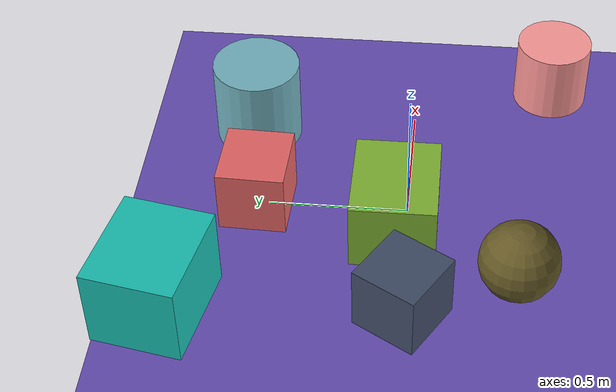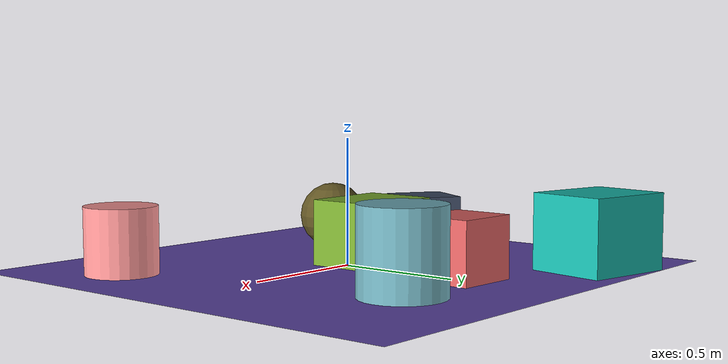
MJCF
<mujoco>
   <asset>
<texture type="skybox" builtin="gradient" rgb1="0.3 0.1 0.4" rgb2="0.5 0.4 0.6" width="256" height="256"/>
<texture name="checker_0" builtin="checker" rgb1="1.0 0.9 0.6" rgb2="1.0 0.3 0.6" width="200" height="200"/>
<texture name="gradient_1" builtin="gradient" rgb1="0.8 0.9 0.6" rgb2="0.1 0.5 0.9" width="200" height="200"/>
<texture name="gradient_2" builtin="gradient" rgb1="0.1 1.0 0.9" rgb2="0.1 0.5 0.5" width="200" height="200"/>
<texture name="checker_3" builtin="checker" rgb1="0.1 0.6 0.3" rgb2="0.7 0.1 0.0" width="200" height="200"/>
<texture name="flat_4" builtin="flat" rgb1="0.9 0.4 0.4" rgb2="0.9 0.4 0.4"  width="200" height="200"/>
<texture name="checker_5" builtin="checker" rgb1="0.3 0.1 0.2" rgb2="0.2 0.5 0.6" width="200" height="200"/>
<texture name="flat_6" builtin="flat" rgb1="0.5 0.7 0.2" rgb2="0.5 0.7 0.2"  width="200" height="200"/><material name="checker_0_mat" reflectance="0" texrepeat="3 3" texture="checker_0" texuniform="false" />
<material name="gradient_1_mat" reflectance="0" texture="gradient_1" texuniform="true"/>
<material name="gradient_2_mat" reflectance="0" texture="gradient_2" texuniform="true"/>
<material name="checker_3_mat" reflectance="0" texrepeat="4 4" texture="checker_3" texuniform="false" />
<material name="flat_4_mat" reflectance="0" texture="flat_4" texuniform="true"/>
<material name="checker_5_mat" reflectance="0" texrepeat="5 5" texture="checker_5" texuniform="false" />
<material name="flat_6_mat" reflectance="0" texture="flat_6" texuniform="true"/>
   </asset>

   <worldbody>
      <light diffuse=".9 .9 .9" pos="0 0 3" dir="0 0 -1"/>
     <geom type="plane" size="1 1 0.1" rgba="0.4 0.3 0.7 1"/>
<geom type="cylinder" pos="0.7 -0.52 0.13" size="0.14 0.13 0.13" material="checker_0_mat" euler="0 0 63" />
<geom type="cylinder" pos="0.4 0.59 0.16" size="0.16 0.16 0.16" material="gradient_1_mat" euler="0 0 45" />
<geom type="box" pos="-0.53 0.81 0.15" size="0.16 0.19 0.15" material="gradient_2_mat" euler="0 0 79" />
<geom type="sphere" pos="-0.35 -0.39 0.14" size="0.14 0.14 0.14" material="checker_3_mat" euler="0 0 41" />
<geom type="box" pos="-0.01 0.54 0.12" size="0.12 0.13 0.12" material="flat_4_mat" euler="0 0 88" />
<geom type="box" pos="-0.5 -0.01 0.12" size="0.12 0.12 0.12" material="checker_5_mat" euler="0 0 59" />
<geom type="box" pos="-0.1 0.04 0.13" size="0.18 0.15 0.13" material="flat_6_mat" euler="0 0 0" /><camera euler="60 0 180" fovy="60" name="camera1" pos="-0.2 -1.5 1"></camera>   </worldbody>
</mujoco>
